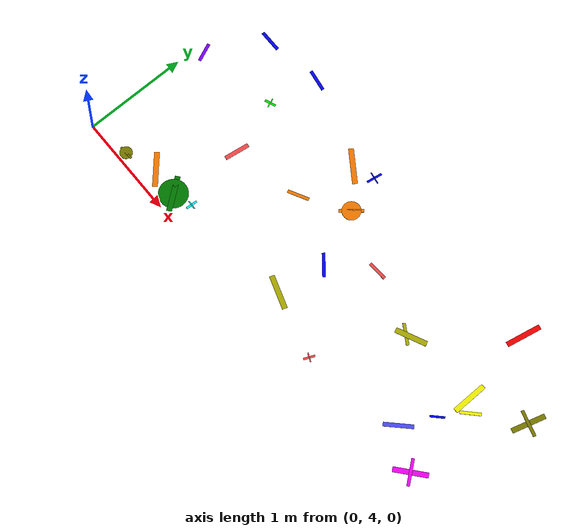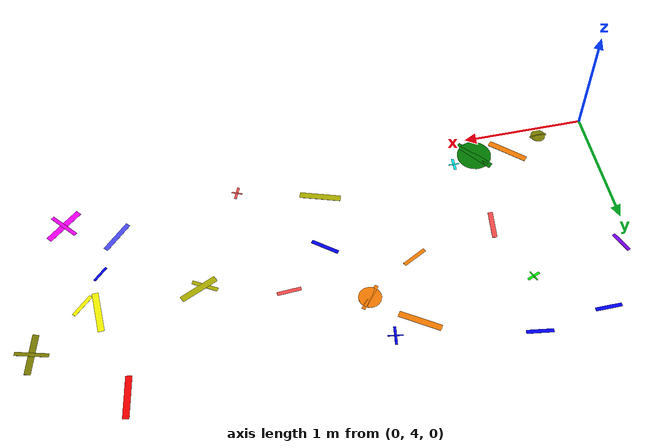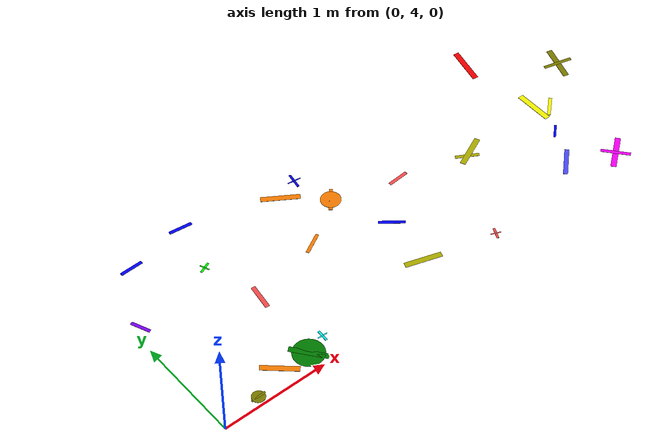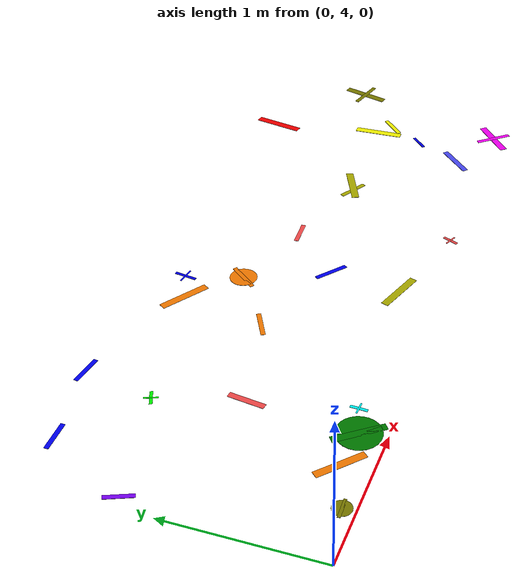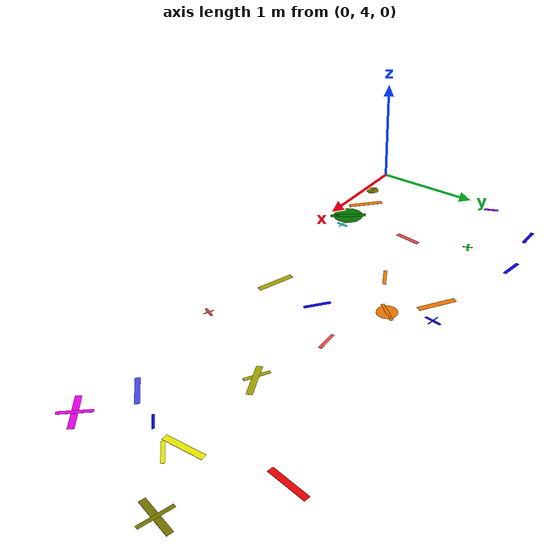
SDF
<sdf version="1.6">
 <world name="default">
  <model name="letter_G_1163">
   <static>true</static>
   <pose>0.39 4.08 0.005 0 0 3.191</pose>
   <link name="link">
    <visual name="visual">
     <geometry><box><size>0.14 0.02 0.002</size></box></geometry>
     <material>
      <ambient>0.5 0.5 0.0 1</ambient>
      <diffuse>0.5 0.5 0.0 1</diffuse>
      <specular>0.1 0.1 0.1 1</specular>
     </material>
    </visual>
    <visual name="visual2">
     <geometry><cylinder><radius>0.06</radius><length>0.002</length></cylinder></geometry>
     <material><ambient>0.5 0.5 0.0 1</ambient><diffuse>0.5 0.5 0.0 1</diffuse></material>
    </visual>
   </link>
  </model>
  <model name="letter_Z_1165">
   <static>true</static>
   <pose>0.08 5.24 0.005 0 0 1.978</pose>
   <link name="link">
    <visual name="visual">
     <geometry><box><size>0.18 0.03 0.002</size></box></geometry>
     <material>
      <ambient>0.5 0.0 1.0 1</ambient>
      <diffuse>0.5 0.0 1.0 1</diffuse>
      <specular>0.1 0.1 0.1 1</specular>
     </material>
    </visual>
   </link>
  </model>
  <model name="letter_V_1167">
   <static>true</static>
   <pose>0.38 5.78 0.012 0 0 0.008</pose>
   <link name="link">
    <visual name="visual">
     <geometry><box><size>0.21 0.03 0.002</size></box></geometry>
     <material>
      <ambient>0.0 0.0 1.0 1</ambient>
      <diffuse>0.0 0.0 1.0 1</diffuse>
      <specular>0.1 0.1 0.1 1</specular>
     </material>
    </visual>
   </link>
  </model>
  <model name="letter_L_1219">
   <static>true</static>
   <pose>1.16 4.23 0.011 0 0 1.526</pose>
   <link name="link">
    <visual name="visual">
     <geometry><box><size>0.11 0.02 0.002</size></box></geometry>
     <material>
      <ambient>0.0 1.0 1.0 1</ambient>
      <diffuse>0.0 1.0 1.0 1</diffuse>
      <specular>0.1 0.1 0.1 1</specular>
     </material>
    </visual>
    <visual name="visual2">
     <pose>0 0 0.001 0 0 1.57</pose>
     <geometry><box><size>0.09 0.01 0.001</size></box></geometry>
     <material><ambient>0.0 1.0 1.0 1</ambient><diffuse>0.0 1.0 1.0 1</diffuse></material>
    </visual>
   </link>
  </model>
  <model name="letter_Q_1220">
   <static>true</static>
   <pose>0.97 4.17 0.004 0 0 2.232</pose>
   <link name="link">
    <visual name="visual">
     <geometry><box><size>0.34 0.05 0.002</size></box></geometry>
     <material>
      <ambient>0.0 0.5 0.0 1</ambient>
      <diffuse>0.0 0.5 0.0 1</diffuse>
      <specular>0.1 0.1 0.1 1</specular>
     </material>
    </visual>
    <visual name="visual2">
     <geometry><cylinder><radius>0.14</radius><length>0.002</length></cylinder></geometry>
     <material><ambient>0.0 0.5 0.0 1</ambient><diffuse>0.0 0.5 0.0 1</diffuse></material>
    </visual>
   </link>
  </model>
  <model name="letter_W_1221">
   <static>true</static>
   <pose>0.69 4.19 0.012 0 0 5.555</pose>
   <link name="link">
    <visual name="visual">
     <geometry><box><size>0.33 0.05 0.002</size></box></geometry>
     <material>
      <ambient>1.0 0.5 0.0 1</ambient>
      <diffuse>1.0 0.5 0.0 1</diffuse>
      <specular>0.1 0.1 0.1 1</specular>
     </material>
    </visual>
   </link>
  </model>
  <model name="letter_I_1222">
   <static>true</static>
   <pose>0.85 5.40 0.013 0 0 0.388</pose>
   <link name="link">
    <visual name="visual">
     <geometry><box><size>0.11 0.02 0.002</size></box></geometry>
     <material>
      <ambient>0.0 1.0 0.0 1</ambient>
      <diffuse>0.0 1.0 0.0 1</diffuse>
      <specular>0.1 0.1 0.1 1</specular>
     </material>
    </visual>
    <visual name="visual2">
     <pose>0 0 0.001 0 0 1.57</pose>
     <geometry><box><size>0.09 0.01 0.001</size></box></geometry>
     <material><ambient>0.0 1.0 0.0 1</ambient><diffuse>0.0 1.0 0.0 1</diffuse></material>
    </visual>
   </link>
  </model>
  <model name="letter_Y_1223">
   <static>true</static>
   <pose>1.02 4.87 0.003 0 0 4.579</pose>
   <link name="link">
    <visual name="visual">
     <geometry><box><size>0.24 0.04 0.002</size></box></geometry>
     <material>
      <ambient>1.0 0.3 0.3 1</ambient>
      <diffuse>1.0 0.3 0.3 1</diffuse>
      <specular>0.1 0.1 0.1 1</specular>
     </material>
    </visual>
   </link>
  </model>
  <model name="letter_X_1224">
   <static>true</static>
   <pose>0.95 5.87 0.011 0 0 3.001</pose>
   <link name="link">
    <visual name="visual">
     <geometry><box><size>0.21 0.03 0.002</size></box></geometry>
     <material>
      <ambient>0.0 0.0 1.0 1</ambient>
      <diffuse>0.0 0.0 1.0 1</diffuse>
      <specular>0.1 0.1 0.1 1</specular>
     </material>
    </visual>
   </link>
  </model>
  <model name="letter_X_1283">
   <static>true</static>
   <pose>2.30 4.32 0.008 0 0 5.970</pose>
   <link name="link">
    <visual name="visual">
     <geometry><box><size>0.33 0.05 0.002</size></box></geometry>
     <material>
      <ambient>0.7 0.7 0.0 1</ambient>
      <diffuse>0.7 0.7 0.0 1</diffuse>
      <specular>0.1 0.1 0.1 1</specular>
     </material>
    </visual>
   </link>
  </model>
  <model name="letter_N_1285">
   <static>true</static>
   <pose>1.70 5.04 0.008 0 0 3.639</pose>
   <link name="link">
    <visual name="visual">
     <geometry><box><size>0.21 0.03 0.002</size></box></geometry>
     <material>
      <ambient>1.0 0.5 0.0 1</ambient>
      <diffuse>1.0 0.5 0.0 1</diffuse>
      <specular>0.1 0.1 0.1 1</specular>
     </material>
    </visual>
   </link>
  </model>
  <model name="letter_O_1286">
   <static>true</static>
   <pose>2.12 5.32 0.007 0 0 4.030</pose>
   <link name="link">
    <visual name="visual">
     <geometry><box><size>0.23 0.03 0.002</size></box></geometry>
     <material>
      <ambient>1.0 0.5 0.0 1</ambient>
      <diffuse>1.0 0.5 0.0 1</diffuse>
      <specular>0.1 0.1 0.1 1</specular>
     </material>
    </visual>
    <visual name="visual2">
     <geometry><cylinder><radius>0.09</radius><length>0.002</length></cylinder></geometry>
     <material><ambient>1.0 0.5 0.0 1</ambient><diffuse>1.0 0.5 0.0 1</diffuse></material>
    </visual>
   </link>
  </model>
  <model name="letter_S_1287">
   <static>true</static>
   <pose>2.36 4.80 0.006 0 0 5.621</pose>
   <link name="link">
    <visual name="visual">
     <geometry><box><size>0.23 0.03 0.002</size></box></geometry>
     <material>
      <ambient>0.0 0.0 1.0 1</ambient>
      <diffuse>0.0 0.0 1.0 1</diffuse>
      <specular>0.1 0.1 0.1 1</specular>
     </material>
    </visual>
   </link>
  </model>
  <model name="letter_H_1289">
   <static>true</static>
   <pose>2.01 5.68 0.007 0 0 4.565</pose>
   <link name="link">
    <visual name="visual">
     <geometry><box><size>0.15 0.02 0.002</size></box></geometry>
     <material>
      <ambient>0.0 0.0 1.0 1</ambient>
      <diffuse>0.0 0.0 1.0 1</diffuse>
      <specular>0.1 0.1 0.1 1</specular>
     </material>
    </visual>
    <visual name="visual2">
     <pose>0 0 0.001 0 0 1.57</pose>
     <geometry><box><size>0.12 0.01 0.001</size></box></geometry>
     <material><ambient>0.0 0.0 1.0 1</ambient><diffuse>0.0 0.0 1.0 1</diffuse></material>
    </visual>
   </link>
  </model>
  <model name="letter_D_1290">
   <static>true</static>
   <pose>1.80 5.60 0.012 0 0 5.705</pose>
   <link name="link">
    <visual name="visual">
     <geometry><box><size>0.34 0.05 0.002</size></box></geometry>
     <material>
      <ambient>1.0 0.5 0.0 1</ambient>
      <diffuse>1.0 0.5 0.0 1</diffuse>
      <specular>0.1 0.1 0.1 1</specular>
     </material>
    </visual>
   </link>
  </model>
  <model name="letter_T_1356">
   <static>true</static>
   <pose>2.95 4.15 0.012 0 0 1.174</pose>
   <link name="link">
    <visual name="visual">
     <geometry><box><size>0.11 0.02 0.002</size></box></geometry>
     <material>
      <ambient>1.0 0.3 0.3 1</ambient>
      <diffuse>1.0 0.3 0.3 1</diffuse>
      <specular>0.1 0.1 0.1 1</specular>
     </material>
    </visual>
    <visual name="visual2">
     <pose>0 0 0.001 0 0 1.57</pose>
     <geometry><box><size>0.09 0.01 0.001</size></box></geometry>
     <material><ambient>1.0 0.3 0.3 1</ambient><diffuse>1.0 0.3 0.3 1</diffuse></material>
    </visual>
   </link>
  </model>
  <model name="letter_K_1358">
   <static>true</static>
   <pose>3.33 4.96 0.008 0 0 2.614</pose>
   <link name="link">
    <visual name="visual">
     <geometry><box><size>0.21 0.03 0.002</size></box></geometry>
     <material>
      <ambient>0.7 0.7 0.0 1</ambient>
      <diffuse>0.7 0.7 0.0 1</diffuse>
      <specular>0.1 0.1 0.1 1</specular>
     </material>
    </visual>
   </link>
  </model>
  <model name="letter_X_1359">
   <static>true</static>
   <pose>3.38 4.98 0.012 0 0 0.445</pose>
   <link name="link">
    <visual name="visual">
     <geometry><box><size>0.31 0.05 0.002</size></box></geometry>
     <material>
      <ambient>0.7 0.7 0.0 1</ambient>
      <diffuse>0.7 0.7 0.0 1</diffuse>
      <specular>0.1 0.1 0.1 1</specular>
     </material>
    </visual>
   </link>
  </model>
  <model name="letter_P_1360">
   <static>true</static>
   <pose>2.71 5.14 0.007 0 0 0.064</pose>
   <link name="link">
    <visual name="visual">
     <geometry><box><size>0.19 0.03 0.002</size></box></geometry>
     <material>
      <ambient>1.0 0.3 0.3 1</ambient>
      <diffuse>1.0 0.3 0.3 1</diffuse>
      <specular>0.1 0.1 0.1 1</specular>
     </material>
    </visual>
   </link>
  </model>
  <model name="letter_T_1432">
   <static>true</static>
   <pose>4.34 4.18 0.007 0 0 0.706</pose>
   <link name="link">
    <visual name="visual">
     <geometry><box><size>0.33 0.05 0.002</size></box></geometry>
     <material>
      <ambient>1.0 0.0 1.0 1</ambient>
      <diffuse>1.0 0.0 1.0 1</diffuse>
      <specular>0.1 0.1 0.1 1</specular>
     </material>
    </visual>
    <visual name="visual2">
     <pose>0 0 0.001 0 0 1.57</pose>
     <geometry><box><size>0.26 0.03 0.001</size></box></geometry>
     <material><ambient>1.0 0.0 1.0 1</ambient><diffuse>1.0 0.0 1.0 1</diffuse></material>
    </visual>
   </link>
  </model>
  <model name="letter_S_1433">
   <static>true</static>
   <pose>3.94 4.37 0.007 0 0 0.792</pose>
   <link name="link">
    <visual name="visual">
     <geometry><box><size>0.28 0.04 0.002</size></box></geometry>
     <material>
      <ambient>0.3 0.3 1.0 1</ambient>
      <diffuse>0.3 0.3 1.0 1</diffuse>
      <specular>0.1 0.1 0.1 1</specular>
     </material>
    </visual>
   </link>
  </model>
  <model name="letter_D_1434">
   <static>true</static>
   <pose>4.10 4.69 0.011 0 0 0.784</pose>
   <link name="link">
    <visual name="visual">
     <geometry><box><size>0.14 0.02 0.002</size></box></geometry>
     <material>
      <ambient>0.0 0.0 1.0 1</ambient>
      <diffuse>0.0 0.0 1.0 1</diffuse>
      <specular>0.1 0.1 0.1 1</specular>
     </material>
    </visual>
   </link>
  </model>
  <model name="letter_B_1435">
   <static>true</static>
   <pose>4.15 5.02 0.006 0 0 4.757</pose>
   <link name="link">
    <visual name="visual">
     <geometry><box><size>0.34 0.05 0.002</size></box></geometry>
     <material>
      <ambient>1.0 1.0 0.0 1</ambient>
      <diffuse>1.0 1.0 0.0 1</diffuse>
      <specular>0.1 0.1 0.1 1</specular>
     </material>
    </visual>
   </link>
  </model>
  <model name="letter_W_1436">
   <static>true</static>
   <pose>4.26 4.94 0.006 0 0 0.775</pose>
   <link name="link">
    <visual name="visual">
     <geometry><box><size>0.20 0.03 0.002</size></box></geometry>
     <material>
      <ambient>1.0 1.0 0.0 1</ambient>
      <diffuse>1.0 1.0 0.0 1</diffuse>
      <specular>0.1 0.1 0.1 1</specular>
     </material>
    </visual>
   </link>
  </model>
  <model name="letter_X_1438">
   <static>true</static>
   <pose>4.01 5.77 0.012 0 0 1.397</pose>
   <link name="link">
    <visual name="visual">
     <geometry><box><size>0.34 0.05 0.002</size></box></geometry>
     <material>
      <ambient>1.0 0.0 0.0 1</ambient>
      <diffuse>1.0 0.0 0.0 1</diffuse>
      <specular>0.1 0.1 0.1 1</specular>
     </material>
    </visual>
   </link>
  </model>
  <model name="letter_A_1509">
   <static>true</static>
   <pose>4.66 5.28 0.009 0 0 1.314</pose>
   <link name="link">
    <visual name="visual">
     <geometry><box><size>0.33 0.05 0.002</size></box></geometry>
     <material>
      <ambient>0.5 0.5 0.0 1</ambient>
      <diffuse>0.5 0.5 0.0 1</diffuse>
      <specular>0.1 0.1 0.1 1</specular>
     </material>
    </visual>
    <visual name="visual2">
     <pose>0 0 0.001 0 0 1.57</pose>
     <geometry><box><size>0.26 0.03 0.001</size></box></geometry>
     <material><ambient>0.5 0.5 0.0 1</ambient><diffuse>0.5 0.5 0.0 1</diffuse></material>
    </visual>
   </link>
  </model>
 </world>
</sdf>
